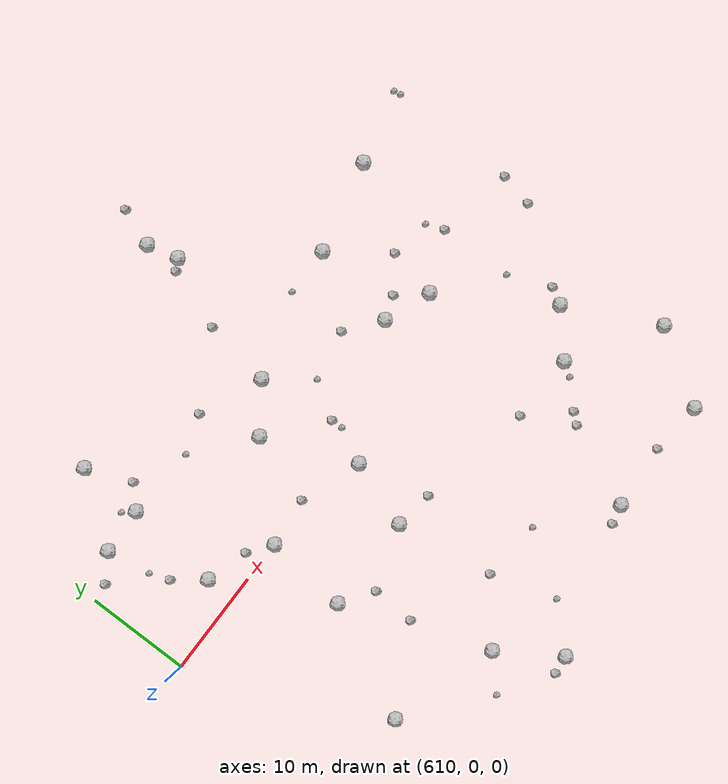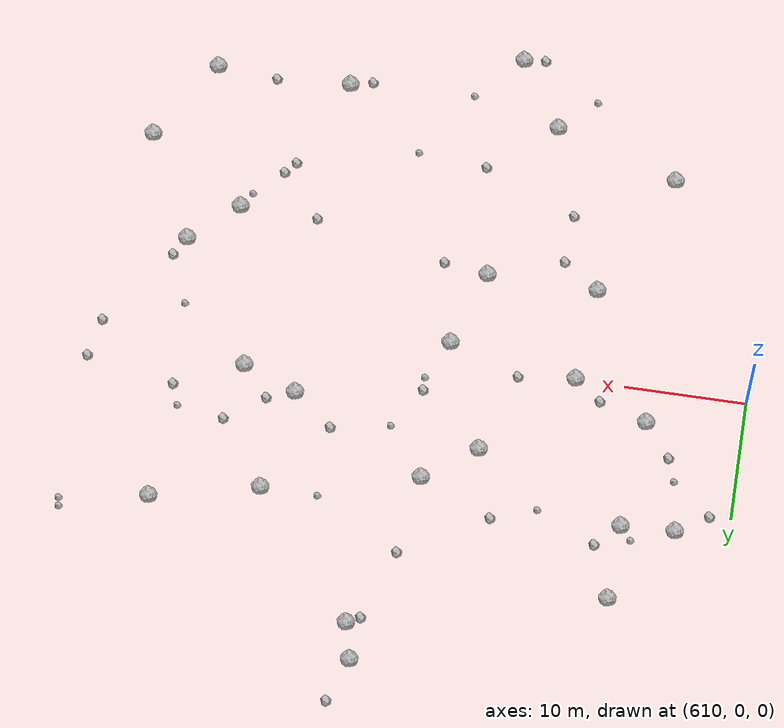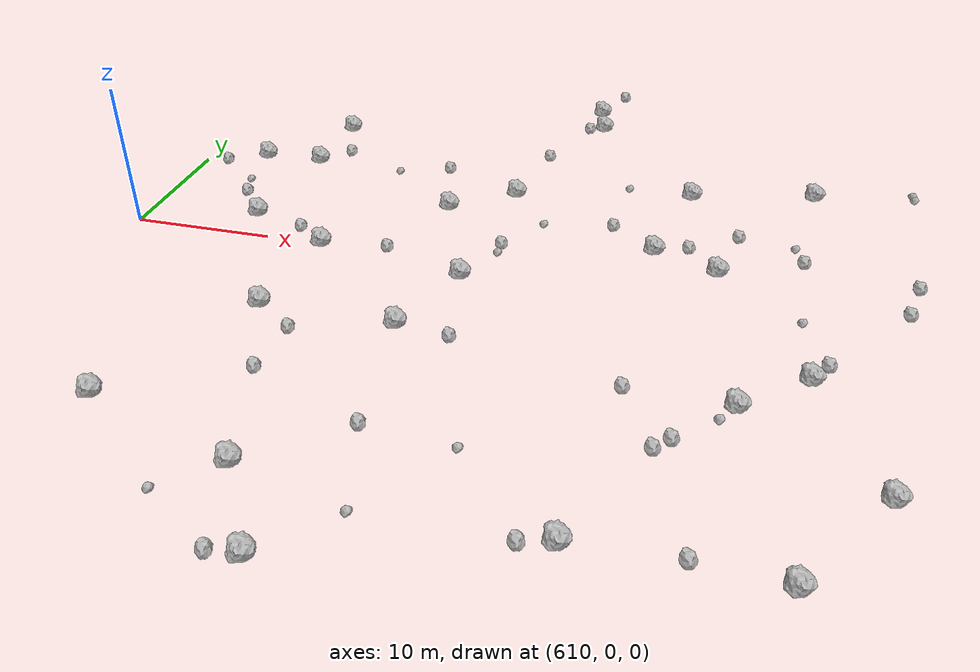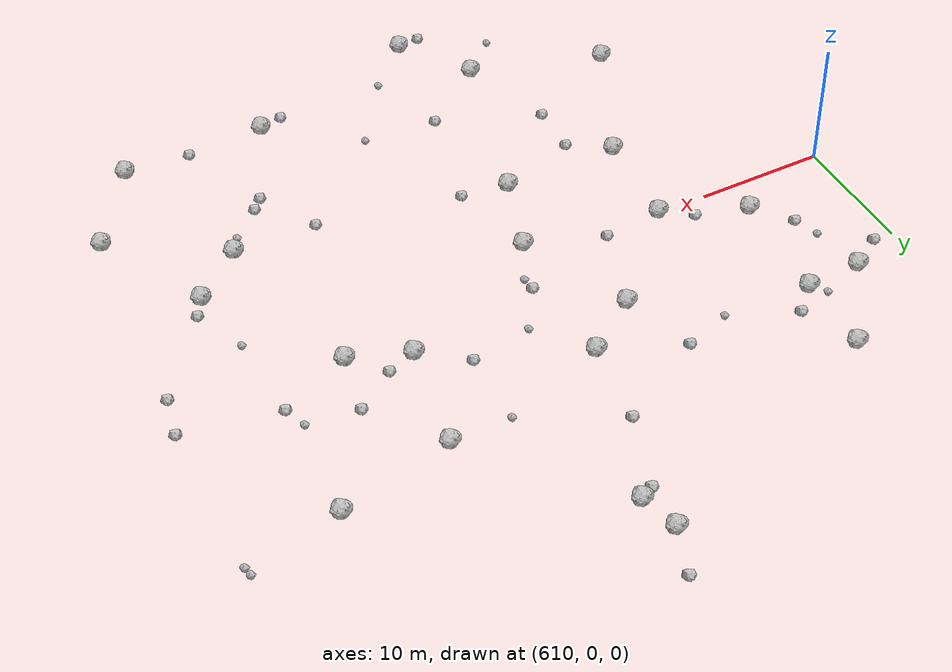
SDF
<sdf version="1.6">
 <world name="default">
  <include><uri>model://sun</uri></include>
  <model name="rock1_16_3">
   <include><uri>model://rock1</uri><pose>651.0862163964956 2.680591850302662 0.5 0 0 0</pose></include>
  </model>
  <model name="rock1_16_4">
   <include><uri>model://rock1</uri><pose>661.7507932078448 -16.30717456866967 0.5 0 0 0</pose></include>
  </model>
  <model name="rock1_16_5">
   <include><uri>model://rock1</uri><pose>623.3318205954641 -7.88689294365135 0.5 0 0 0</pose></include>
  </model>
  <model name="rock1_16_6">
   <include><uri>model://rock1</uri><pose>628.4430599829959 -21.68032582975824 0.5 0 0 0</pose></include>
  </model>
  <model name="rock1_16_7">
   <include><uri>model://rock1</uri><pose>635.3964547337347 10.152900375052546 0.5 0 0 0</pose></include>
  </model>
  <model name="rock1_16_8">
   <include><uri>model://rock1</uri><pose>657.3486025350209 -23.074692235999727 0.5 0 0 0</pose></include>
  </model>
  <model name="rock1_16_9">
   <include><uri>model://rock1</uri><pose>632.4713338639357 -7.967916230571149 0.5 0 0 0</pose></include>
  </model>
  <model name="rock1_16_10">
   <include><uri>model://rock1</uri><pose>624.086009165398 -0.02658347894879398 0.5 0 0 0</pose></include>
  </model>
  <model name="rock1_16_11">
   <include><uri>model://rock1</uri><pose>646.6139843060631 4.425761861424654 0.5 0 0 0</pose></include>
  </model>
  <model name="rock1_16_12">
   <include><uri>model://rock1</uri><pose>634.6512468226034 -1.6693893221724423 0.5 0 0 0</pose></include>
  </model>
  <model name="rock1_16_13">
   <include><uri>model://rock1</uri><pose>648.1692496726062 12.867195771588364 0.5 0 0 0</pose></include>
  </model>
  <model name="rock1_16_14">
   <include><uri>model://rock1</uri><pose>631.0879402420798 7.078100879751915 0.5 0 0 0</pose></include>
  </model>
  <model name="rock1_16_15">
   <include><uri>model://rock1</uri><pose>657.0347193494247 14.871916911087716 0.5 0 0 0</pose></include>
  </model>
  <model name="rock1_16_16">
   <include><uri>model://rock1</uri><pose>646.1552111434726 -23.03825849530157 0.5 0 0 0</pose></include>
  </model>
  <model name="rock1_16_17">
   <include><uri>model://rock1</uri><pose>614.42086574904 11.705286664549426 0.5 0 0 0</pose></include>
  </model>
  <model name="rock1_16_18">
   <include><uri>model://rock1</uri><pose>657.4836174669317 -7.553524699358864 0.5 0 0 0</pose></include>
  </model>
  <model name="rock1_16_19">
   <include><uri>model://rock1</uri><pose>638.8687127882662 26.103021855260778 0.5 0 0 0</pose></include>
  </model>
  <model name="rock1_16_20">
   <include><uri>model://rock1</uri><pose>618.8254089961589 11.896275782859263 0.5 0 0 0</pose></include>
  </model>
  <model name="rock1_16_21">
   <include><uri>model://rock1</uri><pose>639.5905272217933 23.108120883409434 0.5 0 0 0</pose></include>
  </model>
  <model name="rock1_16_22">
   <include><uri>model://rock1</uri><pose>618.1753640187109 -18.408306737473197 0.5 0 0 0</pose></include>
  </model>
  <model name="rock1_16_23">
   <include><uri>model://rock1</uri><pose>653.5498455326372 -10.97301875571236 0.5 0 0 0</pose></include>
  </model>
  <model name="rock1_16_24">
   <include><uri>model://rock1</uri><pose>619.0768105668889 18.082127258042448 0.5 0 0 0</pose></include>
  </model>
  <model name="rock1_16_25">
   <include><uri>model://rock1</uri><pose>617.9061713842306 2.8488773999345014 0.5 0 0 0</pose></include>
  </model>
  <model name="rock1_16_26">
   <include><uri>model://rock1</uri><pose>632.0706489326701 -27.302807242615003 0.5 0 0 0</pose></include>
  </model>
  <model name="rock2_16_0">
   <include><uri>model://rock2</uri><pose>620.7237734007992 13.788297426616808 0.3 0 0 0</pose></include>
  </model>
  <model name="rock2_16_1">
   <include><uri>model://rock2</uri><pose>615.6933279480808 5.640398849922185 0.3 0 0 0</pose></include>
  </model>
  <model name="rock2_16_2">
   <include><uri>model://rock2</uri><pose>636.1156765009717 -8.498691252714899 0.3 0 0 0</pose></include>
  </model>
  <model name="rock2_16_3">
   <include><uri>model://rock2</uri><pose>650.3814496217233 -14.459711575397005 0.3 0 0 0</pose></include>
  </model>
  <model name="rock2_16_4">
   <include><uri>model://rock2</uri><pose>638.4814536162173 22.55725524426297 0.3 0 0 0</pose></include>
  </model>
  <model name="rock2_16_5">
   <include><uri>model://rock2</uri><pose>611.7844380275939 10.111546572597177 0.3 0 0 0</pose></include>
  </model>
  <model name="rock2_16_6">
   <include><uri>model://rock2</uri><pose>663.9236395405964 3.722827792561681 0.3 0 0 0</pose></include>
  </model>
  <model name="rock2_16_7">
   <include><uri>model://rock2</uri><pose>656.5968792782722 5.148281193758734 0.3 0 0 0</pose></include>
  </model>
  <model name="rock2_16_8">
   <include><uri>model://rock2</uri><pose>643.3145153373633 7.014466897016014 0.3 0 0 0</pose></include>
  </model>
  <model name="rock2_16_9">
   <include><uri>model://rock2</uri><pose>636.4119635794474 16.72245274375623 0.3 0 0 0</pose></include>
  </model>
  <model name="rock2_16_10">
   <include><uri>model://rock2</uri><pose>628.7626007611503 0.4850709383542515 0.3 0 0 0</pose></include>
  </model>
  <model name="rock2_16_11">
   <include><uri>model://rock2</uri><pose>636.2704536027506 2.7333161326227895 0.3 0 0 0</pose></include>
  </model>
  <model name="rock2_16_12">
   <include><uri>model://rock2</uri><pose>644.2917012945204 -23.475910641290895 0.3 0 0 0</pose></include>
  </model>
  <model name="rock2_16_13">
   <include><uri>model://rock2</uri><pose>652.2879881492823 -22.63915844986444 0.3 0 0 0</pose></include>
  </model>
  <model name="rock2_16_14">
   <include><uri>model://rock2</uri><pose>663.2152746239807 0.5033109299603709 0.3 0 0 0</pose></include>
  </model>
  <model name="rock2_16_15">
   <include><uri>model://rock2</uri><pose>640.2026415877741 29.769984639394842 0.3 0 0 0</pose></include>
  </model>
  <model name="rock2_16_16">
   <include><uri>model://rock2</uri><pose>658.3929264880637 -5.98612493871229 0.3 0 0 0</pose></include>
  </model>
  <model name="rock2_16_17">
   <include><uri>model://rock2</uri><pose>630.2649374674759 -27.499236421496303 0.3 0 0 0</pose></include>
  </model>
  <model name="rock2_16_18">
   <include><uri>model://rock2</uri><pose>648.8675873691724 5.245700654463285 0.3 0 0 0</pose></include>
  </model>
  <model name="rock2_16_19">
   <include><uri>model://rock2</uri><pose>633.8480807246564 -17.32489013791305 0.3 0 0 0</pose></include>
  </model>
  <model name="rock2_16_20">
   <include><uri>model://rock2</uri><pose>626.0797059762292 -14.079203530403673 0.3 0 0 0</pose></include>
  </model>
  <model name="rock2_16_21">
   <include><uri>model://rock2</uri><pose>626.2918223320634 -9.977565711712234 0.3 0 0 0</pose></include>
  </model>
  <model name="rock2_16_22">
   <include><uri>model://rock2</uri><pose>652.0683802719694 7.499645250466777 0.3 0 0 0</pose></include>
  </model>
  <model name="rock2_16_23">
   <include><uri>model://rock2</uri><pose>629.3549673892117 12.785466022174177 0.3 0 0 0</pose></include>
  </model>
  <model name="rock2_16_24">
   <include><uri>model://rock2</uri><pose>647.0804244501333 -10.772027078280491 0.3 0 0 0</pose></include>
  </model>
  <model name="rock2_16_25">
   <include><uri>model://rock2</uri><pose>649.5265507014731 -15.433484718726403 0.3 0 0 0</pose></include>
  </model>
  <model name="rock2_16_26">
   <include><uri>model://rock2</uri><pose>621.8504265735195 1.631833869242815 0.3 0 0 0</pose></include>
  </model>
  <model name="rock3_16_0">
   <include><uri>model://rock3</uri><pose>639.5831571771693 -17.895610279607844 0.2 0 0 0</pose></include>
  </model>
  <model name="rock3_16_1">
   <include><uri>model://rock3</uri><pose>652.6812031650727 -12.30082586462521 0.2 0 0 0</pose></include>
  </model>
  <model name="rock3_16_2">
   <include><uri>model://rock3</uri><pose>638.4261278802105 6.077874232176256 0.2 0 0 0</pose></include>
  </model>
  <model name="rock3_16_3">
   <include><uri>model://rock3</uri><pose>656.7276776812325 -1.9605144973749482 0.2 0 0 0</pose></include>
  </model>
  <model name="rock3_16_4">
   <include><uri>model://rock3</uri><pose>664.1940457774919 16.03573404185012 0.2 0 0 0</pose></include>
  </model>
  <model name="rock3_16_5">
   <include><uri>model://rock3</uri><pose>617.8395049355923 12.939380216032582 0.2 0 0 0</pose></include>
  </model>
  <model name="rock3_16_6">
   <include><uri>model://rock3</uri><pose>614.9747505509145 7.498059422726655 0.2 0 0 0</pose></include>
  </model>
  <model name="rock3_16_7">
   <include><uri>model://rock3</uri><pose>664.073902174235 16.722147927759863 0.2 0 0 0</pose></include>
  </model>
  <model name="rock3_16_8">
   <include><uri>model://rock3</uri><pose>655.9370033165417 6.85421899747864 0.2 0 0 0</pose></include>
  </model>
  <model name="rock3_16_9">
   <include><uri>model://rock3</uri><pose>635.7096493858394 -23.592145322656922 0.2 0 0 0</pose></include>
  </model>
  <model name="rock3_16_10">
   <include><uri>model://rock3</uri><pose>625.6408467715273 11.471396851539723 0.2 0 0 0</pose></include>
  </model>
  <model name="rock3_16_11">
   <include><uri>model://rock3</uri><pose>636.2656761967085 1.5719170328132108 0.2 0 0 0</pose></include>
  </model>
  <model name="rock3_16_12">
   <include><uri>model://rock3</uri><pose>625.4294032425406 -24.474702254300126 0.2 0 0 0</pose></include>
  </model>
  <model name="rock3_16_13">
   <include><uri>model://rock3</uri><pose>643.4540831821328 12.84742913777788 0.2 0 0 0</pose></include>
  </model>
 </world>
</sdf>
